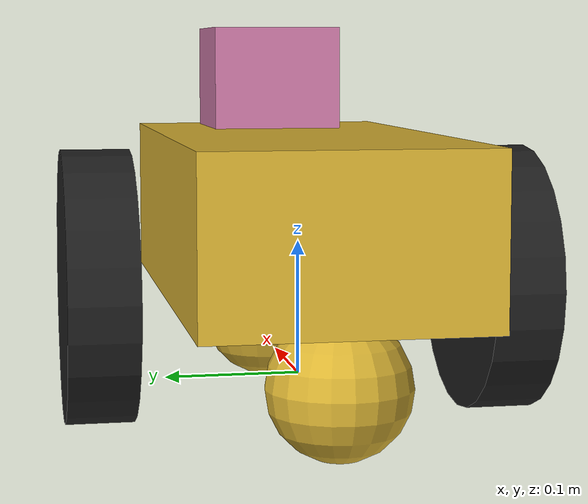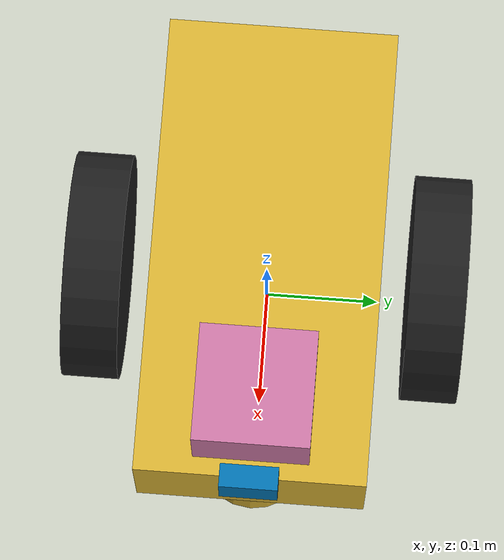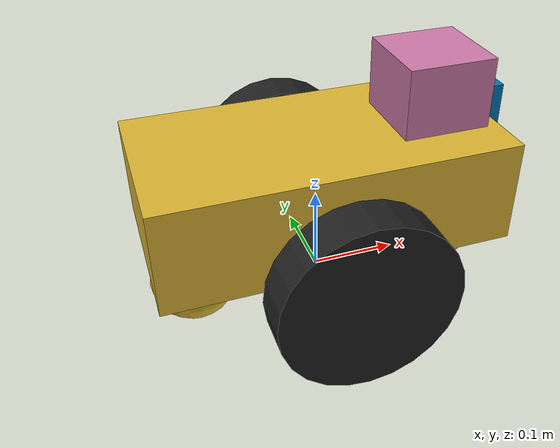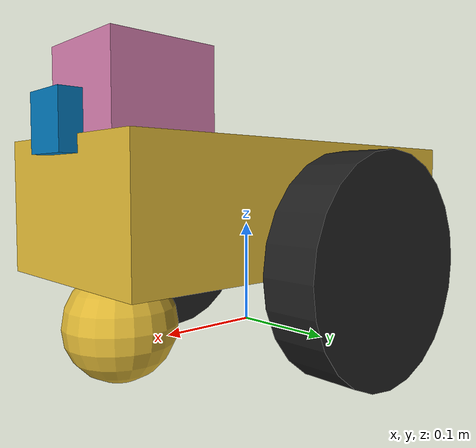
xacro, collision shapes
<?xml version='1.0'?>

<robot name="udacity_bot" xmlns:xacro="http://www.ros.org/wiki/xacro">

<!-- Configure differential drive controller Gazebo plugin -->
<xacro:arg name="odometryTopic" default="odom" />
<xacro:arg name="odometryFrame" default="odom" />
<xacro:arg name="robotBaseFrame" default="robot_footprint" />
<xacro:arg name="diff_drive_publishTf" default="true" />
<xacro:arg name="diff_drive_publishOdomTF" default="true" />

<!-- Determine presence of RGB camera sensor -->
<xacro:arg name="add_camera_sensor" default="true" />

<!-- Determine presence of Hokuyo laser sensor -->
<xacro:arg name="add_laser_sensor" default="true" />

<!-- Configure ground truth odometry Gazebo plugin -->
<xacro:arg name="p3d_base_controller_enabled" default="false" />

<xacro:include filename="$(find udacity_bot)/urdf/udacity_bot.gazebo" />

<xacro:if value="$(arg p3d_base_controller_enabled)">
<xacro:include filename="$(find udacity_bot)/urdf/p3d_base_controller.gazebo" />
</xacro:if>

<!-- Determine the name of the robot's root link -->
  <link name="robot_footprint"></link>

  <joint name="robot_footprint_joint" type="fixed">
    <origin xyz="0 0 0.12" rpy="0 0 0" />
    <parent link="robot_footprint"/>
    <child link="chassis" />
  </joint>

  <link name='chassis'>
    <pose>0 0 0 0 0 0</pose>

    <inertial>
      <mass value="15.0"/>
      <origin xyz="0.0 0 0" rpy=" 0 0 0"/>
      <inertia
          ixx="0.1" ixy="0" ixz="0"
          iyy="0.1" iyz="0"
          izz="0.1"
      />
    </inertial>

    <collision name='collision'>
      <origin xyz="0 0 0" rpy=" 0 0 0"/>
      <geometry>
        <box size=".4 .2 .12"/>
      </geometry>
    </collision>

    <visual name='chassis_visual'>
      <origin xyz="0 0 0" rpy=" 0 0 0"/>
      <geometry>
        <box size=".4 .2 .12"/>
      </geometry>
    </visual>

    <collision name='back_caster_collision'>
      <origin xyz="-0.15 0 -0.1" rpy=" 0 0 0"/>
      <geometry>
        <sphere radius="0.0499"/>
      </geometry>
    </collision>

    <visual name='back_caster_visual'>
      <origin xyz="-0.15 0 -0.1" rpy=" 0 0 0"/>
      <geometry>
        <sphere radius="0.05"/>
      </geometry>
    </visual>

    <collision name='front_caster_collision'>
      <origin xyz="0.15 0 -0.1" rpy=" 0 0 0"/>
      <geometry>
        <sphere radius="0.0499"/>
      </geometry>
    </collision>

    <visual name='front_caster_visual'>
      <origin xyz="0.15 0 -0.1" rpy=" 0 0 0"/>
      <geometry>
        <sphere radius="0.05"/>
      </geometry>
    </visual>

  </link>

<joint type="continuous" name="left_wheel_hinge">
    <origin xyz="0 0.15 -0.05" rpy="0 0 0"/>
    <child link="left_wheel"/>
    <parent link="chassis"/>
    <axis xyz="0 1 0" rpy="0 0 0"/>
    <limit effort="10000" velocity="1000"/>
    <dynamics damping="1.0" friction="1.0"/>
  </joint>

<link name='left_wheel'>
    <pose>0 0 0.1 0 0 0</pose>

    <inertial>
      <mass value="5.0"/>
      <origin xyz="0.0 0 0" rpy=" 0 1.5707 1.5707"/>
      <inertia
          ixx="0.1" ixy="0" ixz="0"
          iyy="0.1" iyz="0"
          izz="0.1"
      />
    </inertial>

    <collision name='left_wheel_collision'>
      <origin xyz="0 0 0" rpy=" 0 1.5707 1.5707"/>
      <geometry>
        <cylinder radius="0.1" length="0.05"/>
      </geometry>
    </collision>

    <visual name='left_wheel_visual'>
      <origin xyz="0.0 0 0" rpy=" 0 1.5707 1.5707"/>
      <geometry>
        <cylinder radius="0.1" length="0.05"/>
      </geometry>
    </visual>
  </link>

<joint type="continuous" name="right_wheel_hinge">
    <origin xyz="0 -0.15 -0.05" rpy="0 0 0"/>
    <child link="right_wheel"/>
    <parent link="chassis"/>
    <axis xyz="0 1 0" rpy="0 0 0"/>
    <limit effort="10000" velocity="1000"/>
    <dynamics damping="1.0" friction="1.0"/>
  </joint>

<link name='right_wheel'>
    <pose>0 0 0.1 0 0 0</pose>

    <inertial>
      <mass value="5.0"/>
      <origin xyz="0.0 0 0" rpy=" 0 1.5707 1.5707"/>
      <inertia
          ixx="0.1" ixy="0" ixz="0"
          iyy="0.1" iyz="0"
          izz="0.1"
      />
    </inertial>

    <collision name='right_wheel_collision'>
      <origin xyz="0.0 0 0" rpy=" 0 1.5707 1.5707"/>
      <geometry>
        <cylinder radius="0.1" length="0.05"/>
      </geometry>
    </collision>

    <visual name='right_wheel_visual'>
      <origin xyz="0.0 0 0" rpy=" 0 1.5707 1.5707"/>
      <geometry>
        <cylinder radius="0.1" length="0.05"/>
      </geometry>
    </visual>
  </link>

<!-- Add a regular RGB Camera -->

<xacro:if value="$(arg add_camera_sensor)">
  <!-- Add Camera link, joints and mesh -->
  <xacro:include filename="$(find udacity_bot)/urdf/rgb_camera.xacro"/>
  <!-- Add Gazebo Camera Plugin -->
  <xacro:include filename="$(find udacity_bot)/urdf/rgb_camera.gazebo"/>
</xacro:if>

<!-- Add a Hokuyo laser scanner -->

<xacro:if value="$(arg add_laser_sensor)">
  <!-- Add Laser link, joints and mesh -->
  <xacro:include filename="$(find udacity_bot)/urdf/hokuyo_laser.xacro"/>
  <!-- Add Gazebo Laser Plugin -->
  <xacro:include filename="$(find udacity_bot)/urdf/hokuyo_laser.gazebo"/>
</xacro:if>

</robot>

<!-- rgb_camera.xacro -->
<robot xmlns:xacro="http://www.ros.org/wiki/xacro">

   <link name="camera">
      <inertial>
         <mass value="0.1" />
         <origin xyz="0.0 0 0" rpy="0 0 0" />
         <inertia ixx="0.0001" ixy="0" ixz="0" iyy="0.0001" iyz="0" izz="0.0001" />
      </inertial>
      <collision name="camera_collision">
         <origin xyz="0.0 0 0" rpy="0 0 0" />
         <geometry>
            <box size="0.02 0.05 0.05" />
         </geometry>
      </collision>
      <visual name="camera_visual">
         <origin xyz="0 0 0" rpy="0 0 0" />
         <geometry>
            <mesh filename="package://udacity_bot/meshes/camera.dae" />
         </geometry>
      </visual>
   </link>

   <joint type="fixed" name="camera_joint">
      <!-- Determine offset distance and orientation with respect to the parent link (here: chassis) -->
      <origin xyz="0.205 0.0 0.07" rpy="0 0 0" />
      <child link="camera" />
      <parent link="chassis" />
   </joint>

   <link name="camera_tf_frame" />
   <joint name="camera_tf_frame_joint" type="fixed">
      <!-- Determine offset distance and orientation with respect to the parent link (here: chassis) -->
      <origin xyz="0.205 0.0 0.07" rpy="1.57079 3.14159 1.57079" />
      <parent link="chassis" />
      <child link="camera_tf_frame" />
   </joint>

</robot>

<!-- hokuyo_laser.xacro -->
<robot xmlns:xacro="http://www.ros.org/wiki/xacro">

<link name="hokuyo">
    <pose>0 0 0.1 0 0 0</pose>

    <inertial>
        <mass value="0.1" />
        <origin xyz="0.0 0 0" rpy="0 0 0" />
        <inertia ixx="0.0001" ixy="0" ixz="0" iyy="0.0001" iyz="0" izz="0.0001" />
    </inertial>

    <collision name="hokuyo_collision">
        <origin xyz="0.0 0 0" rpy="0 0 0" />
        <geometry>
            <box size="0.1 0.1 0.1" />
        </geometry>
    </collision>

    <visual name="hokuyo_visual">
        <origin xyz="0.0 0 0" rpy="0 0 0" />
        <geometry>
            <mesh filename="package://udacity_bot/meshes/hokuyo.dae" />
        </geometry>
    </visual>

</link>

<joint type="fixed" name="hokuyo_joint">
    <origin xyz="0.135 0 0.09" rpy="0 0 0" />
    <child link="hokuyo" />
    <parent link="chassis" />
</joint>

</robot>
